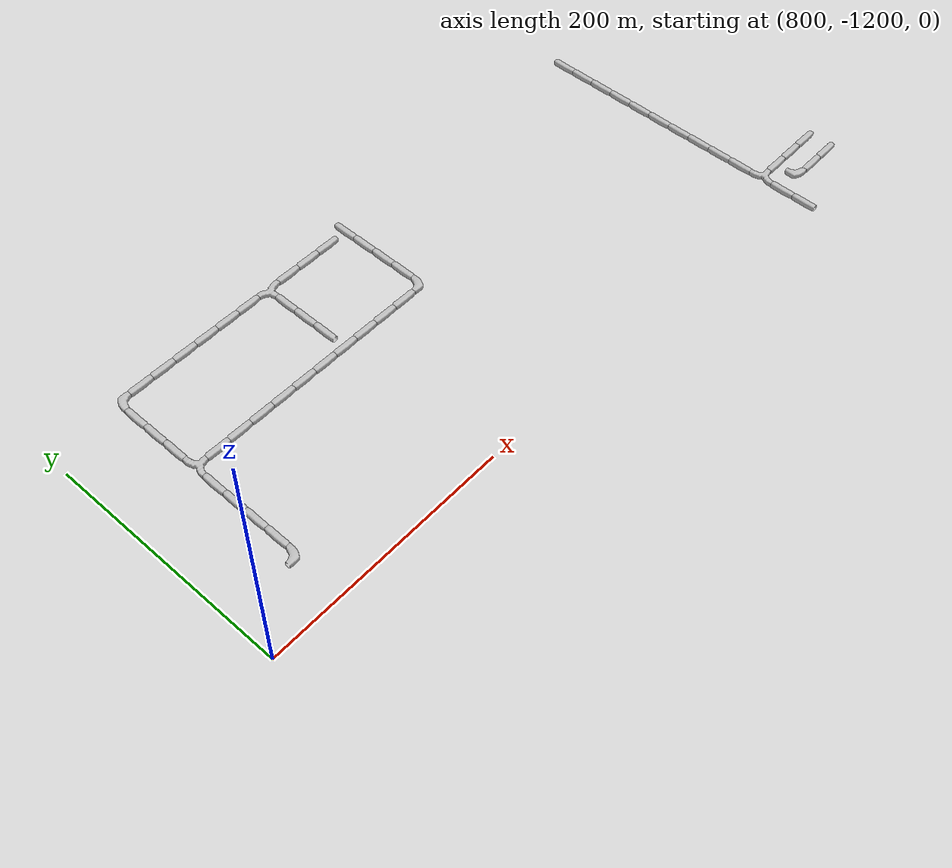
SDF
<sdf version="1.6">
 <world name="cave_32000_32">
  <include>
   <static>true</static>
   <name>cave_70_-60</name>
   <pose>1400 -1200 0 0 0 1.5707963267948966</pose>
   <uri>model://cave_straight_20m</uri>
  </include>
  <include>
   <static>true</static>
   <name>cave_69_-60</name>
   <pose>1380 -1200 0 0 0 1.5707963267948966</pose>
   <uri>model://cave_straight_20m</uri>
  </include>
  <include>
   <static>true</static>
   <name>cave_68_-60</name>
   <pose>1360 -1200 0 0 0 0.0</pose>
   <uri>model://cave_L_20m</uri>
  </include>
  <include>
   <static>true</static>
   <name>cave_70_-59</name>
   <pose>1400 -1180 0 0 0 1.5707963267948966</pose>
   <uri>model://cave_straight_20m</uri>
  </include>
  <include>
   <static>true</static>
   <name>cave_69_-59</name>
   <pose>1380 -1180 0 0 0 1.5707963267948966</pose>
   <uri>model://cave_straight_20m</uri>
  </include>
  <include>
   <static>true</static>
   <name>cave_68_-59</name>
   <pose>1360 -1180 0 0 0 1.5707963267948966</pose>
   <uri>model://cave_straight_20m</uri>
  </include>
  <include>
   <static>true</static>
   <name>cave_67_-59</name>
   <pose>1340 -1180 0 0 0 -1.5707963267948966</pose>
   <uri>model://cave_3way_20m</uri>
  </include>
  <include>
   <static>true</static>
   <name>cave_67_-60</name>
   <pose>1340 -1200 0 0 0 0.0</pose>
   <uri>model://cave_straight_20m</uri>
  </include>
  <include>
   <static>true</static>
   <name>cave_67_-61</name>
   <pose>1340 -1220 0 0 0 0.0</pose>
   <uri>model://cave_straight_20m</uri>
  </include>
  <include>
   <static>true</static>
   <name>cave_67_-58</name>
   <pose>1340 -1160 0 0 0 0.0</pose>
   <uri>model://cave_straight_20m</uri>
  </include>
  <include>
   <static>true</static>
   <name>cave_67_-57</name>
   <pose>1340 -1140 0 0 0 0.0</pose>
   <uri>model://cave_straight_20m</uri>
  </include>
  <include>
   <static>true</static>
   <name>cave_67_-56</name>
   <pose>1340 -1120 0 0 0 0.0</pose>
   <uri>model://cave_straight_20m</uri>
  </include>
  <include>
   <static>true</static>
   <name>cave_67_-55</name>
   <pose>1340 -1100 0 0 0 0.0</pose>
   <uri>model://cave_straight_20m</uri>
  </include>
  <include>
   <static>true</static>
   <name>cave_67_-54</name>
   <pose>1340 -1080 0 0 0 0.0</pose>
   <uri>model://cave_straight_20m</uri>
  </include>
  <include>
   <static>true</static>
   <name>cave_67_-53</name>
   <pose>1340 -1060 0 0 0 0.0</pose>
   <uri>model://cave_straight_20m</uri>
  </include>
  <include>
   <static>true</static>
   <name>cave_67_-52</name>
   <pose>1340 -1040 0 0 0 0.0</pose>
   <uri>model://cave_straight_20m</uri>
  </include>
  <include>
   <static>true</static>
   <name>cave_67_-51</name>
   <pose>1340 -1020 0 0 0 0.0</pose>
   <uri>model://cave_straight_20m</uri>
  </include>
  <include>
   <static>true</static>
   <name>cave_67_-50</name>
   <pose>1340 -1000 0 0 0 0.0</pose>
   <uri>model://cave_straight_20m</uri>
  </include>
  <include>
   <static>true</static>
   <name>cave_67_-49</name>
   <pose>1340 -980 0 0 0 0.0</pose>
   <uri>model://cave_straight_20m</uri>
  </include>
  <include>
   <static>true</static>
   <name>cave_54_-49</name>
   <pose>1080 -980 0 0 0 0.0</pose>
   <uri>model://cave_straight_20m</uri>
  </include>
  <include>
   <static>true</static>
   <name>cave_54_-50</name>
   <pose>1080 -1000 0 0 0 0.0</pose>
   <uri>model://cave_straight_20m</uri>
  </include>
  <include>
   <static>true</static>
   <name>cave_54_-51</name>
   <pose>1080 -1020 0 0 0 0.0</pose>
   <uri>model://cave_straight_20m</uri>
  </include>
  <include>
   <static>true</static>
   <name>cave_54_-52</name>
   <pose>1080 -1040 0 0 0 0.0</pose>
   <uri>model://cave_straight_20m</uri>
  </include>
  <include>
   <static>true</static>
   <name>cave_54_-53</name>
   <pose>1080 -1060 0 0 0 1.5707963267948966</pose>
   <uri>model://cave_L_20m</uri>
  </include>
  <include>
   <static>true</static>
   <name>cave_53_-53</name>
   <pose>1060 -1060 0 0 0 1.5707963267948966</pose>
   <uri>model://cave_straight_20m</uri>
  </include>
  <include>
   <static>true</static>
   <name>cave_52_-53</name>
   <pose>1040 -1060 0 0 0 1.5707963267948966</pose>
   <uri>model://cave_straight_20m</uri>
  </include>
  <include>
   <static>true</static>
   <name>cave_51_-53</name>
   <pose>1020 -1060 0 0 0 1.5707963267948966</pose>
   <uri>model://cave_straight_20m</uri>
  </include>
  <include>
   <static>true</static>
   <name>cave_50_-53</name>
   <pose>1000 -1060 0 0 0 1.5707963267948966</pose>
   <uri>model://cave_straight_20m</uri>
  </include>
  <include>
   <static>true</static>
   <name>cave_49_-53</name>
   <pose>980 -1060 0 0 0 1.5707963267948966</pose>
   <uri>model://cave_straight_20m</uri>
  </include>
  <include>
   <static>true</static>
   <name>cave_48_-53</name>
   <pose>960 -1060 0 0 0 1.5707963267948966</pose>
   <uri>model://cave_straight_20m</uri>
  </include>
  <include>
   <static>true</static>
   <name>cave_47_-53</name>
   <pose>940 -1060 0 0 0 1.5707963267948966</pose>
   <uri>model://cave_straight_20m</uri>
  </include>
  <include>
   <static>true</static>
   <name>cave_46_-53</name>
   <pose>920 -1060 0 0 0 1.5707963267948966</pose>
   <uri>model://cave_straight_20m</uri>
  </include>
  <include>
   <static>true</static>
   <name>cave_45_-53</name>
   <pose>900 -1060 0 0 0 1.5707963267948966</pose>
   <uri>model://cave_straight_20m</uri>
  </include>
  <include>
   <static>true</static>
   <name>cave_44_-53</name>
   <pose>880 -1060 0 0 0 1.5707963267948966</pose>
   <uri>model://cave_straight_20m</uri>
  </include>
  <include>
   <static>true</static>
   <name>cave_43_-53</name>
   <pose>860 -1060 0 0 0 -1.5707963267948966</pose>
   <uri>model://cave_3way_20m</uri>
  </include>
  <include>
   <static>true</static>
   <name>cave_43_-54</name>
   <pose>860 -1080 0 0 0 0.0</pose>
   <uri>model://cave_straight_20m</uri>
  </include>
  <include>
   <static>true</static>
   <name>cave_43_-55</name>
   <pose>860 -1100 0 0 0 0.0</pose>
   <uri>model://cave_straight_20m</uri>
  </include>
  <include>
   <static>true</static>
   <name>cave_43_-56</name>
   <pose>860 -1120 0 0 0 0.0</pose>
   <uri>model://cave_straight_20m</uri>
  </include>
  <include>
   <static>true</static>
   <name>cave_43_-57</name>
   <pose>860 -1140 0 0 0 0.0</pose>
   <uri>model://cave_straight_20m</uri>
  </include>
  <include>
   <static>true</static>
   <name>cave_43_-58</name>
   <pose>860 -1160 0 0 0 1.5707963267948966</pose>
   <uri>model://cave_L_20m</uri>
  </include>
  <include>
   <static>true</static>
   <name>cave_43_-52</name>
   <pose>860 -1040 0 0 0 0.0</pose>
   <uri>model://cave_straight_20m</uri>
  </include>
  <include>
   <static>true</static>
   <name>cave_43_-51</name>
   <pose>860 -1020 0 0 0 0.0</pose>
   <uri>model://cave_straight_20m</uri>
  </include>
  <include>
   <static>true</static>
   <name>cave_43_-50</name>
   <pose>860 -1000 0 0 0 0.0</pose>
   <uri>model://cave_straight_20m</uri>
  </include>
  <include>
   <static>true</static>
   <name>cave_43_-49</name>
   <pose>860 -980 0 0 0 -1.5707963267948966</pose>
   <uri>model://cave_L_20m</uri>
  </include>
  <include>
   <static>true</static>
   <name>cave_44_-49</name>
   <pose>880 -980 0 0 0 1.5707963267948966</pose>
   <uri>model://cave_straight_20m</uri>
  </include>
  <include>
   <static>true</static>
   <name>cave_45_-49</name>
   <pose>900 -980 0 0 0 1.5707963267948966</pose>
   <uri>model://cave_straight_20m</uri>
  </include>
  <include>
   <static>true</static>
   <name>cave_46_-49</name>
   <pose>920 -980 0 0 0 1.5707963267948966</pose>
   <uri>model://cave_straight_20m</uri>
  </include>
  <include>
   <static>true</static>
   <name>cave_47_-49</name>
   <pose>940 -980 0 0 0 1.5707963267948966</pose>
   <uri>model://cave_straight_20m</uri>
  </include>
  <include>
   <static>true</static>
   <name>cave_48_-49</name>
   <pose>960 -980 0 0 0 1.5707963267948966</pose>
   <uri>model://cave_straight_20m</uri>
  </include>
  <include>
   <static>true</static>
   <name>cave_49_-49</name>
   <pose>980 -980 0 0 0 1.5707963267948966</pose>
   <uri>model://cave_straight_20m</uri>
  </include>
  <include>
   <static>true</static>
   <name>cave_50_-49</name>
   <pose>1000 -980 0 0 0 3.141592653589793</pose>
   <uri>model://cave_3way_20m</uri>
  </include>
  <include>
   <static>true</static>
   <name>cave_51_-49</name>
   <pose>1020 -980 0 0 0 1.5707963267948966</pose>
   <uri>model://cave_straight_20m</uri>
  </include>
  <include>
   <static>true</static>
   <name>cave_52_-49</name>
   <pose>1040 -980 0 0 0 1.5707963267948966</pose>
   <uri>model://cave_straight_20m</uri>
  </include>
  <include>
   <static>true</static>
   <name>cave_53_-49</name>
   <pose>1060 -980 0 0 0 1.5707963267948966</pose>
   <uri>model://cave_straight_20m</uri>
  </include>
  <include>
   <static>true</static>
   <name>cave_50_-50</name>
   <pose>1000 -1000 0 0 0 0.0</pose>
   <uri>model://cave_straight_20m</uri>
  </include>
  <include>
   <static>true</static>
   <name>cave_50_-51</name>
   <pose>1000 -1020 0 0 0 0.0</pose>
   <uri>model://cave_straight_20m</uri>
  </include>
  <include>
   <static>true</static>
   <name>cave_50_-52</name>
   <pose>1000 -1040 0 0 0 0.0</pose>
   <uri>model://cave_straight_20m</uri>
  </include>
 </world>
</sdf>
